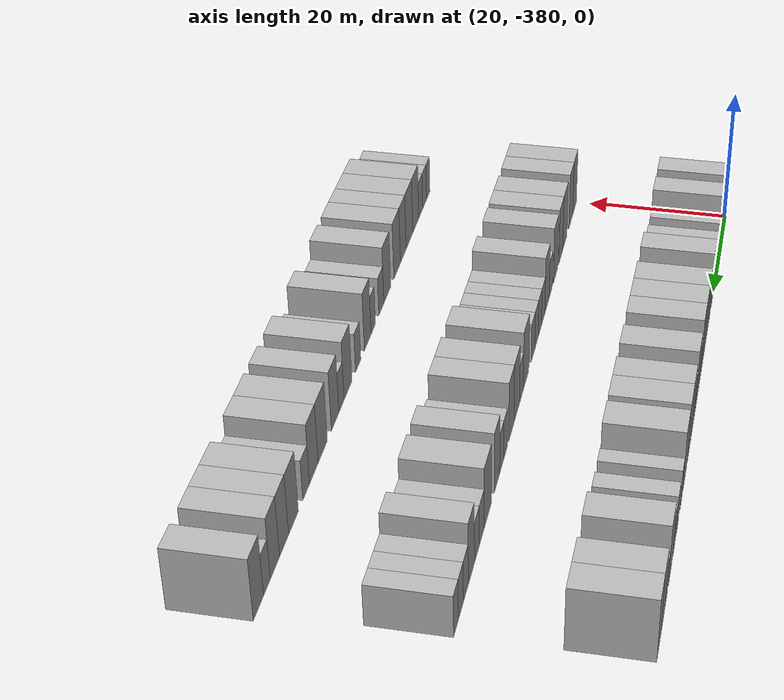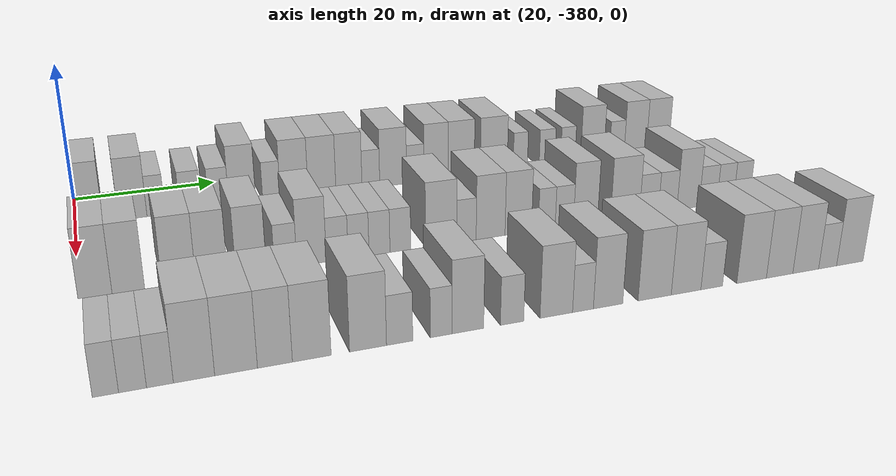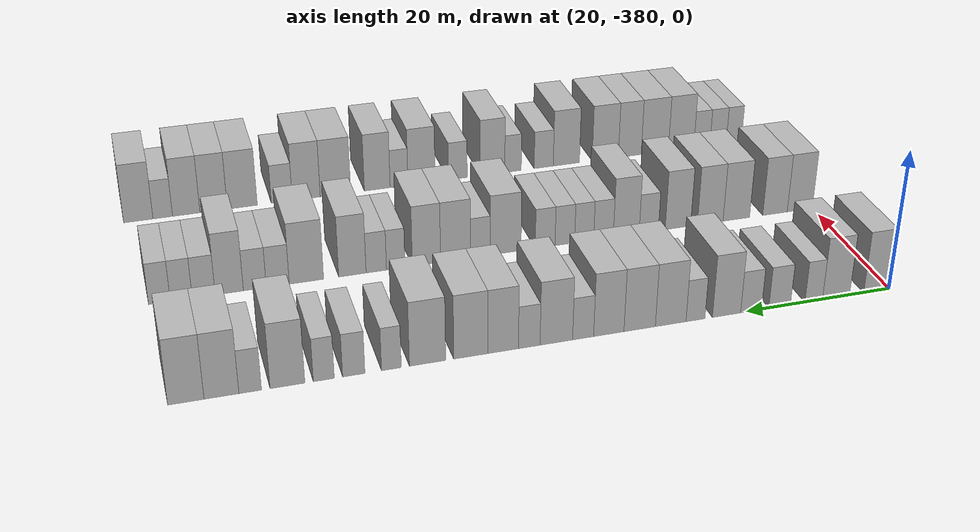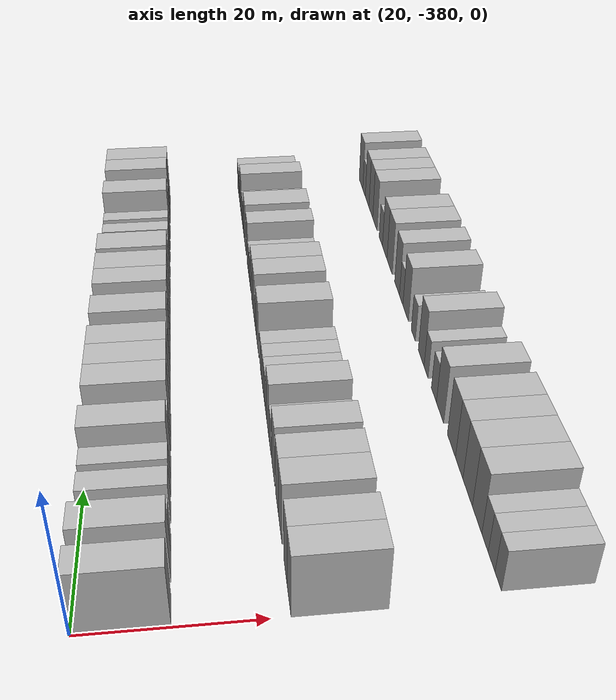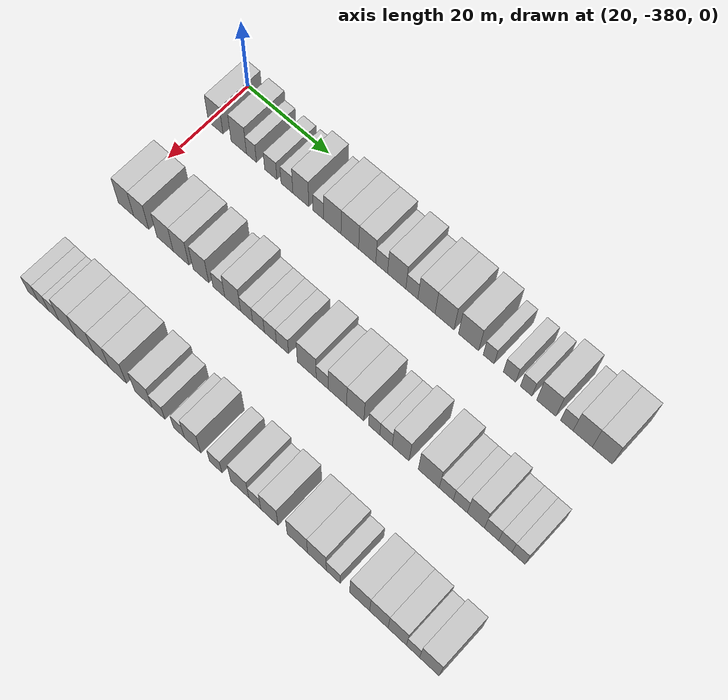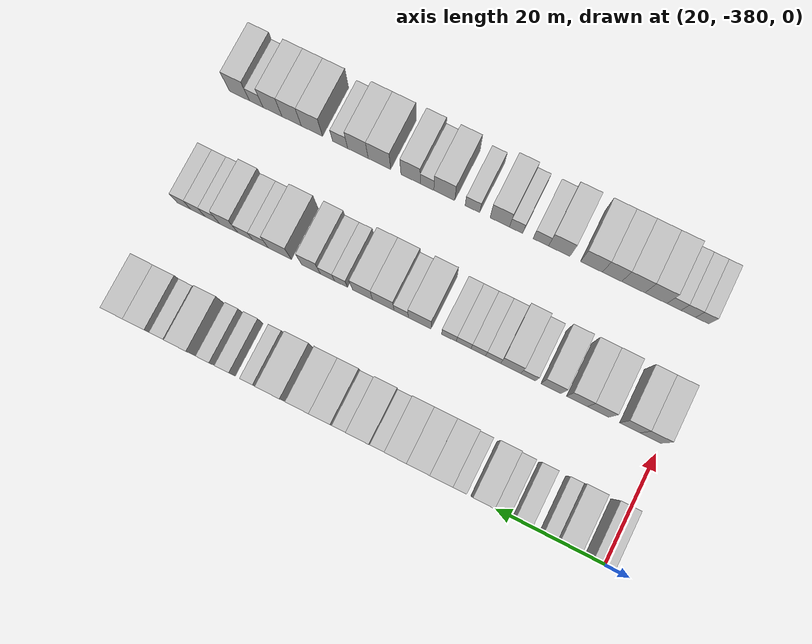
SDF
<sdf version="1.6">
 <world name="default">
  <model name="building_1">
   <static>1</static>
   <pose>25.0000 -378.1661 0 0.000000 0.000000 0.000000</pose>
   <link name="link">
    <pose>0 0 4.50 0 0 0</pose>
    <collision name="collision"><geometry><box><size>10.0000 3.6678 9.0000</size></box></geometry></collision>
    <visual name="visual">
     <cast_shadows>0</cast_shadows>
     <geometry><box><size>10.0000 3.6678 9.0000</size></box></geometry>
     <material>
      <script>
       <uri>model://HANNAS_wall/materials/scripts</uri>
       <uri>model://HANNAS_wall/materials/textures</uri>
       <name>vrc/HANNAS_wall</name>
      </script>
     </material>
    </visual>
   </link>
  </model>
  <model name="building_2">
   <static>1</static>
   <pose>25.0000 -372.4223 0 0.000000 0.000000 0.000000</pose>
   <link name="link">
    <pose>0 0 4.50 0 0 0</pose>
    <collision name="collision"><geometry><box><size>10.0000 3.8199 9.0000</size></box></geometry></collision>
    <visual name="visual">
     <cast_shadows>0</cast_shadows>
     <geometry><box><size>10.0000 3.8199 9.0000</size></box></geometry>
     <material>
      <script>
       <uri>model://HANNAS_wall/materials/scripts</uri>
       <uri>model://HANNAS_wall/materials/textures</uri>
       <name>vrc/HANNAS_wall</name>
      </script>
     </material>
    </visual>
   </link>
  </model>
  <model name="building_3">
   <static>1</static>
   <pose>25.0000 -369.2865 0 0.000000 0.000000 0.000000</pose>
   <link name="link">
    <pose>0 0 3.00 0 0 0</pose>
    <collision name="collision"><geometry><box><size>10.0000 2.4517 6.0000</size></box></geometry></collision>
    <visual name="visual">
     <cast_shadows>0</cast_shadows>
     <geometry><box><size>10.0000 2.4517 6.0000</size></box></geometry>
     <material>
      <script>
       <uri>model://HANNAS_wall/materials/scripts</uri>
       <uri>model://HANNAS_wall/materials/textures</uri>
       <name>vrc/HANNAS_wall</name>
      </script>
     </material>
    </visual>
   </link>
  </model>
  <model name="building_4">
   <static>1</static>
   <pose>25.0000 -364.5643 0 0.000000 0.000000 0.000000</pose>
   <link name="link">
    <pose>0 0 3.00 0 0 0</pose>
    <collision name="collision"><geometry><box><size>10.0000 2.9926 6.0000</size></box></geometry></collision>
    <visual name="visual">
     <cast_shadows>0</cast_shadows>
     <geometry><box><size>10.0000 2.9926 6.0000</size></box></geometry>
     <material>
      <script>
       <uri>model://HANNAS_wall/materials/scripts</uri>
       <uri>model://HANNAS_wall/materials/textures</uri>
       <name>vrc/HANNAS_wall</name>
      </script>
     </material>
    </visual>
   </link>
  </model>
  <model name="building_5">
   <static>1</static>
   <pose>25.0000 -360.6418 0 0.000000 0.000000 0.000000</pose>
   <link name="link">
    <pose>0 0 3.00 0 0 0</pose>
    <collision name="collision"><geometry><box><size>10.0000 2.8523 6.0000</size></box></geometry></collision>
    <visual name="visual">
     <cast_shadows>0</cast_shadows>
     <geometry><box><size>10.0000 2.8523 6.0000</size></box></geometry>
     <material>
      <script>
       <uri>model://HANNAS_wall/materials/scripts</uri>
       <uri>model://HANNAS_wall/materials/textures</uri>
       <name>vrc/HANNAS_wall</name>
      </script>
     </material>
    </visual>
   </link>
  </model>
  <model name="building_6">
   <static>1</static>
   <pose>25.0000 -357.3003 0 0.000000 0.000000 0.000000</pose>
   <link name="link">
    <pose>0 0 4.50 0 0 0</pose>
    <collision name="collision"><geometry><box><size>10.0000 3.8306 9.0000</size></box></geometry></collision>
    <visual name="visual">
     <cast_shadows>0</cast_shadows>
     <geometry><box><size>10.0000 3.8306 9.0000</size></box></geometry>
     <material>
      <script>
       <uri>model://HANNAS_wall/materials/scripts</uri>
       <uri>model://HANNAS_wall/materials/textures</uri>
       <name>vrc/HANNAS_wall</name>
      </script>
     </material>
    </visual>
   </link>
  </model>
  <model name="building_7">
   <static>1</static>
   <pose>25.0000 -353.1122 0 0.000000 0.000000 0.000000</pose>
   <link name="link">
    <pose>0 0 3.00 0 0 0</pose>
    <collision name="collision"><geometry><box><size>10.0000 2.5456 6.0000</size></box></geometry></collision>
    <visual name="visual">
     <cast_shadows>0</cast_shadows>
     <geometry><box><size>10.0000 2.5456 6.0000</size></box></geometry>
     <material>
      <script>
       <uri>model://HANNAS_wall/materials/scripts</uri>
       <uri>model://HANNAS_wall/materials/textures</uri>
       <name>vrc/HANNAS_wall</name>
      </script>
     </material>
    </visual>
   </link>
  </model>
  <model name="building_8">
   <static>1</static>
   <pose>25.0000 -349.7991 0 0.000000 0.000000 0.000000</pose>
   <link name="link">
    <pose>0 0 4.50 0 0 0</pose>
    <collision name="collision"><geometry><box><size>10.0000 4.0807 9.0000</size></box></geometry></collision>
    <visual name="visual">
     <cast_shadows>0</cast_shadows>
     <geometry><box><size>10.0000 4.0807 9.0000</size></box></geometry>
     <material>
      <script>
       <uri>model://HANNAS_wall/materials/scripts</uri>
       <uri>model://HANNAS_wall/materials/textures</uri>
       <name>vrc/HANNAS_wall</name>
      </script>
     </material>
    </visual>
   </link>
  </model>
  <model name="building_9">
   <static>1</static>
   <pose>25.0000 -345.6903 0 0.000000 0.000000 0.000000</pose>
   <link name="link">
    <pose>0 0 4.50 0 0 0</pose>
    <collision name="collision"><geometry><box><size>10.0000 4.1368 9.0000</size></box></geometry></collision>
    <visual name="visual">
     <cast_shadows>0</cast_shadows>
     <geometry><box><size>10.0000 4.1368 9.0000</size></box></geometry>
     <material>
      <script>
       <uri>model://HANNAS_wall/materials/scripts</uri>
       <uri>model://HANNAS_wall/materials/textures</uri>
       <name>vrc/HANNAS_wall</name>
      </script>
     </material>
    </visual>
   </link>
  </model>
  <model name="building_10">
   <static>1</static>
   <pose>25.0000 -341.6438 0 0.000000 0.000000 0.000000</pose>
   <link name="link">
    <pose>0 0 4.50 0 0 0</pose>
    <collision name="collision"><geometry><box><size>10.0000 3.9563 9.0000</size></box></geometry></collision>
    <visual name="visual">
     <cast_shadows>0</cast_shadows>
     <geometry><box><size>10.0000 3.9563 9.0000</size></box></geometry>
     <material>
      <script>
       <uri>model://HANNAS_wall/materials/scripts</uri>
       <uri>model://HANNAS_wall/materials/textures</uri>
       <name>vrc/HANNAS_wall</name>
      </script>
     </material>
    </visual>
   </link>
  </model>
  <model name="building_11">
   <static>1</static>
   <pose>25.0000 -338.3065 0 0.000000 0.000000 0.000000</pose>
   <link name="link">
    <pose>0 0 3.00 0 0 0</pose>
    <collision name="collision"><geometry><box><size>10.0000 2.7184 6.0000</size></box></geometry></collision>
    <visual name="visual">
     <cast_shadows>0</cast_shadows>
     <geometry><box><size>10.0000 2.7184 6.0000</size></box></geometry>
     <material>
      <script>
       <uri>model://HANNAS_wall/materials/scripts</uri>
       <uri>model://HANNAS_wall/materials/textures</uri>
       <name>vrc/HANNAS_wall</name>
      </script>
     </material>
    </visual>
   </link>
  </model>
  <model name="building_12">
   <static>1</static>
   <pose>25.0000 -334.8588 0 0.000000 0.000000 0.000000</pose>
   <link name="link">
    <pose>0 0 4.50 0 0 0</pose>
    <collision name="collision"><geometry><box><size>10.0000 4.1769 9.0000</size></box></geometry></collision>
    <visual name="visual">
     <cast_shadows>0</cast_shadows>
     <geometry><box><size>10.0000 4.1769 9.0000</size></box></geometry>
     <material>
      <script>
       <uri>model://HANNAS_wall/materials/scripts</uri>
       <uri>model://HANNAS_wall/materials/textures</uri>
       <name>vrc/HANNAS_wall</name>
      </script>
     </material>
    </visual>
   </link>
  </model>
  <model name="building_13">
   <static>1</static>
   <pose>25.0000 -331.3985 0 0.000000 0.000000 0.000000</pose>
   <link name="link">
    <pose>0 0 3.00 0 0 0</pose>
    <collision name="collision"><geometry><box><size>10.0000 2.7438 6.0000</size></box></geometry></collision>
    <visual name="visual">
     <cast_shadows>0</cast_shadows>
     <geometry><box><size>10.0000 2.7438 6.0000</size></box></geometry>
     <material>
      <script>
       <uri>model://HANNAS_wall/materials/scripts</uri>
       <uri>model://HANNAS_wall/materials/textures</uri>
       <name>vrc/HANNAS_wall</name>
      </script>
     </material>
    </visual>
   </link>
  </model>
  <model name="building_14">
   <static>1</static>
   <pose>25.0000 -328.0920 0 0.000000 0.000000 0.000000</pose>
   <link name="link">
    <pose>0 0 4.50 0 0 0</pose>
    <collision name="collision"><geometry><box><size>10.0000 3.8692 9.0000</size></box></geometry></collision>
    <visual name="visual">
     <cast_shadows>0</cast_shadows>
     <geometry><box><size>10.0000 3.8692 9.0000</size></box></geometry>
     <material>
      <script>
       <uri>model://HANNAS_wall/materials/scripts</uri>
       <uri>model://HANNAS_wall/materials/textures</uri>
       <name>vrc/HANNAS_wall</name>
      </script>
     </material>
    </visual>
   </link>
  </model>
  <model name="building_15">
   <static>1</static>
   <pose>25.0000 -324.0392 0 0.000000 0.000000 0.000000</pose>
   <link name="link">
    <pose>0 0 4.50 0 0 0</pose>
    <collision name="collision"><geometry><box><size>10.0000 4.2364 9.0000</size></box></geometry></collision>
    <visual name="visual">
     <cast_shadows>0</cast_shadows>
     <geometry><box><size>10.0000 4.2364 9.0000</size></box></geometry>
     <material>
      <script>
       <uri>model://HANNAS_wall/materials/scripts</uri>
       <uri>model://HANNAS_wall/materials/textures</uri>
       <name>vrc/HANNAS_wall</name>
      </script>
     </material>
    </visual>
   </link>
  </model>
  <model name="building_16">
   <static>1</static>
   <pose>25.0000 -318.6943 0 0.000000 0.000000 0.000000</pose>
   <link name="link">
    <pose>0 0 4.50 0 0 0</pose>
    <collision name="collision"><geometry><box><size>10.0000 4.4535 9.0000</size></box></geometry></collision>
    <visual name="visual">
     <cast_shadows>0</cast_shadows>
     <geometry><box><size>10.0000 4.4535 9.0000</size></box></geometry>
     <material>
      <script>
       <uri>model://HANNAS_wall/materials/scripts</uri>
       <uri>model://HANNAS_wall/materials/textures</uri>
       <name>vrc/HANNAS_wall</name>
      </script>
     </material>
    </visual>
   </link>
  </model>
  <model name="building_17">
   <static>1</static>
   <pose>25.0000 -314.2670 0 0.000000 0.000000 0.000000</pose>
   <link name="link">
    <pose>0 0 3.00 0 0 0</pose>
    <collision name="collision"><geometry><box><size>10.0000 2.4010 6.0000</size></box></geometry></collision>
    <visual name="visual">
     <cast_shadows>0</cast_shadows>
     <geometry><box><size>10.0000 2.4010 6.0000</size></box></geometry>
     <material>
      <script>
       <uri>model://HANNAS_wall/materials/scripts</uri>
       <uri>model://HANNAS_wall/materials/textures</uri>
       <name>vrc/HANNAS_wall</name>
      </script>
     </material>
    </visual>
   </link>
  </model>
  <model name="building_18">
   <static>1</static>
   <pose>25.0000 -309.7268 0 0.000000 0.000000 0.000000</pose>
   <link name="link">
    <pose>0 0 3.00 0 0 0</pose>
    <collision name="collision"><geometry><box><size>10.0000 2.6794 6.0000</size></box></geometry></collision>
    <visual name="visual">
     <cast_shadows>0</cast_shadows>
     <geometry><box><size>10.0000 2.6794 6.0000</size></box></geometry>
     <material>
      <script>
       <uri>model://HANNAS_wall/materials/scripts</uri>
       <uri>model://HANNAS_wall/materials/textures</uri>
       <name>vrc/HANNAS_wall</name>
      </script>
     </material>
    </visual>
   </link>
  </model>
  <model name="building_19">
   <static>1</static>
   <pose>25.0000 -306.1387 0 0.000000 0.000000 0.000000</pose>
   <link name="link">
    <pose>0 0 3.00 0 0 0</pose>
    <collision name="collision"><geometry><box><size>10.0000 2.4970 6.0000</size></box></geometry></collision>
    <visual name="visual">
     <cast_shadows>0</cast_shadows>
     <geometry><box><size>10.0000 2.4970 6.0000</size></box></geometry>
     <material>
      <script>
       <uri>model://HANNAS_wall/materials/scripts</uri>
       <uri>model://HANNAS_wall/materials/textures</uri>
       <name>vrc/HANNAS_wall</name>
      </script>
     </material>
    </visual>
   </link>
  </model>
  <model name="building_20">
   <static>1</static>
   <pose>25.0000 -301.8421 0 0.000000 0.000000 0.000000</pose>
   <link name="link">
    <pose>0 0 4.50 0 0 0</pose>
    <collision name="collision"><geometry><box><size>10.0000 4.0961 9.0000</size></box></geometry></collision>
    <visual name="visual">
     <cast_shadows>0</cast_shadows>
     <geometry><box><size>10.0000 4.0961 9.0000</size></box></geometry>
     <material>
      <script>
       <uri>model://HANNAS_wall/materials/scripts</uri>
       <uri>model://HANNAS_wall/materials/textures</uri>
       <name>vrc/HANNAS_wall</name>
      </script>
     </material>
    </visual>
   </link>
  </model>
  <model name="building_21">
   <static>1</static>
   <pose>25.0000 -297.4829 0 0.000000 0.000000 0.000000</pose>
   <link name="link">
    <pose>0 0 3.00 0 0 0</pose>
    <collision name="collision"><geometry><box><size>10.0000 2.6222 6.0000</size></box></geometry></collision>
    <visual name="visual">
     <cast_shadows>0</cast_shadows>
     <geometry><box><size>10.0000 2.6222 6.0000</size></box></geometry>
     <material>
      <script>
       <uri>model://HANNAS_wall/materials/scripts</uri>
       <uri>model://HANNAS_wall/materials/textures</uri>
       <name>vrc/HANNAS_wall</name>
      </script>
     </material>
    </visual>
   </link>
  </model>
  <model name="building_22">
   <static>1</static>
   <pose>25.0000 -294.1592 0 0.000000 0.000000 0.000000</pose>
   <link name="link">
    <pose>0 0 4.50 0 0 0</pose>
    <collision name="collision"><geometry><box><size>10.0000 4.0253 9.0000</size></box></geometry></collision>
    <visual name="visual">
     <cast_shadows>0</cast_shadows>
     <geometry><box><size>10.0000 4.0253 9.0000</size></box></geometry>
     <material>
      <script>
       <uri>model://HANNAS_wall/materials/scripts</uri>
       <uri>model://HANNAS_wall/materials/textures</uri>
       <name>vrc/HANNAS_wall</name>
      </script>
     </material>
    </visual>
   </link>
  </model>
  <model name="building_23">
   <static>1</static>
   <pose>25.0000 -290.0691 0 0.000000 0.000000 0.000000</pose>
   <link name="link">
    <pose>0 0 4.50 0 0 0</pose>
    <collision name="collision"><geometry><box><size>10.0000 4.1551 9.0000</size></box></geometry></collision>
    <visual name="visual">
     <cast_shadows>0</cast_shadows>
     <geometry><box><size>10.0000 4.1551 9.0000</size></box></geometry>
     <material>
      <script>
       <uri>model://HANNAS_wall/materials/scripts</uri>
       <uri>model://HANNAS_wall/materials/textures</uri>
       <name>vrc/HANNAS_wall</name>
      </script>
     </material>
    </visual>
   </link>
  </model>
  <model name="building_194">
   <static>1</static>
   <pose>47.0000 -378.0715 0 0.000000 0.000000 0.000000</pose>
   <link name="link">
    <pose>0 0 4.50 0 0 0</pose>
    <collision name="collision"><geometry><box><size>10.0000 3.8570 9.0000</size></box></geometry></collision>
    <visual name="visual">
     <cast_shadows>0</cast_shadows>
     <geometry><box><size>10.0000 3.8570 9.0000</size></box></geometry>
     <material>
      <script>
       <uri>model://HANNAS_wall/materials/scripts</uri>
       <uri>model://HANNAS_wall/materials/textures</uri>
       <name>vrc/HANNAS_wall</name>
      </script>
     </material>
    </visual>
   </link>
  </model>
  <model name="building_195">
   <static>1</static>
   <pose>47.0000 -374.2709 0 0.000000 0.000000 0.000000</pose>
   <link name="link">
    <pose>0 0 4.50 0 0 0</pose>
    <collision name="collision"><geometry><box><size>10.0000 3.7442 9.0000</size></box></geometry></collision>
    <visual name="visual">
     <cast_shadows>0</cast_shadows>
     <geometry><box><size>10.0000 3.7442 9.0000</size></box></geometry>
     <material>
      <script>
       <uri>model://HANNAS_wall/materials/scripts</uri>
       <uri>model://HANNAS_wall/materials/textures</uri>
       <name>vrc/HANNAS_wall</name>
      </script>
     </material>
    </visual>
   </link>
  </model>
  <model name="building_196">
   <static>1</static>
   <pose>47.0000 -368.3946 0 0.000000 0.000000 0.000000</pose>
   <link name="link">
    <pose>0 0 4.50 0 0 0</pose>
    <collision name="collision"><geometry><box><size>10.0000 4.0084 9.0000</size></box></geometry></collision>
    <visual name="visual">
     <cast_shadows>0</cast_shadows>
     <geometry><box><size>10.0000 4.0084 9.0000</size></box></geometry>
     <material>
      <script>
       <uri>model://HANNAS_wall/materials/scripts</uri>
       <uri>model://HANNAS_wall/materials/textures</uri>
       <name>vrc/HANNAS_wall</name>
      </script>
     </material>
    </visual>
   </link>
  </model>
  <model name="building_197">
   <static>1</static>
   <pose>47.0000 -364.4704 0 0.000000 0.000000 0.000000</pose>
   <link name="link">
    <pose>0 0 4.50 0 0 0</pose>
    <collision name="collision"><geometry><box><size>10.0000 3.8400 9.0000</size></box></geometry></collision>
    <visual name="visual">
     <cast_shadows>0</cast_shadows>
     <geometry><box><size>10.0000 3.8400 9.0000</size></box></geometry>
     <material>
      <script>
       <uri>model://HANNAS_wall/materials/scripts</uri>
       <uri>model://HANNAS_wall/materials/textures</uri>
       <name>vrc/HANNAS_wall</name>
      </script>
     </material>
    </visual>
   </link>
  </model>
  <model name="building_198">
   <static>1</static>
   <pose>47.0000 -359.6664 0 0.000000 0.000000 0.000000</pose>
   <link name="link">
    <pose>0 0 4.50 0 0 0</pose>
    <collision name="collision"><geometry><box><size>10.0000 3.7680 9.0000</size></box></geometry></collision>
    <visual name="visual">
     <cast_shadows>0</cast_shadows>
     <geometry><box><size>10.0000 3.7680 9.0000</size></box></geometry>
     <material>
      <script>
       <uri>model://HANNAS_wall/materials/scripts</uri>
       <uri>model://HANNAS_wall/materials/textures</uri>
       <name>vrc/HANNAS_wall</name>
      </script>
     </material>
    </visual>
   </link>
  </model>
  <model name="building_199">
   <static>1</static>
   <pose>47.0000 -355.3762 0 0.000000 0.000000 0.000000</pose>
   <link name="link">
    <pose>0 0 3.00 0 0 0</pose>
    <collision name="collision"><geometry><box><size>10.0000 2.8125 6.0000</size></box></geometry></collision>
    <visual name="visual">
     <cast_shadows>0</cast_shadows>
     <geometry><box><size>10.0000 2.8125 6.0000</size></box></geometry>
     <material>
      <script>
       <uri>model://HANNAS_wall/materials/scripts</uri>
       <uri>model://HANNAS_wall/materials/textures</uri>
       <name>vrc/HANNAS_wall</name>
      </script>
     </material>
    </visual>
   </link>
  </model>
  <model name="building_200">
   <static>1</static>
   <pose>47.0000 -352.0876 0 0.000000 0.000000 0.000000</pose>
   <link name="link">
    <pose>0 0 4.50 0 0 0</pose>
    <collision name="collision"><geometry><box><size>10.0000 3.7647 9.0000</size></box></geometry></collision>
    <visual name="visual">
     <cast_shadows>0</cast_shadows>
     <geometry><box><size>10.0000 3.7647 9.0000</size></box></geometry>
     <material>
      <script>
       <uri>model://HANNAS_wall/materials/scripts</uri>
       <uri>model://HANNAS_wall/materials/textures</uri>
       <name>vrc/HANNAS_wall</name>
      </script>
     </material>
    </visual>
   </link>
  </model>
  <model name="building_201">
   <static>1</static>
   <pose>47.0000 -348.7897 0 0.000000 0.000000 0.000000</pose>
   <link name="link">
    <pose>0 0 3.00 0 0 0</pose>
    <collision name="collision"><geometry><box><size>10.0000 2.8311 6.0000</size></box></geometry></collision>
    <visual name="visual">
     <cast_shadows>0</cast_shadows>
     <geometry><box><size>10.0000 2.8311 6.0000</size></box></geometry>
     <material>
      <script>
       <uri>model://HANNAS_wall/materials/scripts</uri>
       <uri>model://HANNAS_wall/materials/textures</uri>
       <name>vrc/HANNAS_wall</name>
      </script>
     </material>
    </visual>
   </link>
  </model>
  <model name="building_202">
   <static>1</static>
   <pose>47.0000 -346.0051 0 0.000000 0.000000 0.000000</pose>
   <link name="link">
    <pose>0 0 3.00 0 0 0</pose>
    <collision name="collision"><geometry><box><size>10.0000 2.7381 6.0000</size></box></geometry></collision>
    <visual name="visual">
     <cast_shadows>0</cast_shadows>
     <geometry><box><size>10.0000 2.7381 6.0000</size></box></geometry>
     <material>
      <script>
       <uri>model://HANNAS_wall/materials/scripts</uri>
       <uri>model://HANNAS_wall/materials/textures</uri>
       <name>vrc/HANNAS_wall</name>
      </script>
     </material>
    </visual>
   </link>
  </model>
  <model name="building_203">
   <static>1</static>
   <pose>47.0000 -343.2416 0 0.000000 0.000000 0.000000</pose>
   <link name="link">
    <pose>0 0 3.00 0 0 0</pose>
    <collision name="collision"><geometry><box><size>10.0000 2.7889 6.0000</size></box></geometry></collision>
    <visual name="visual">
     <cast_shadows>0</cast_shadows>
     <geometry><box><size>10.0000 2.7889 6.0000</size></box></geometry>
     <material>
      <script>
       <uri>model://HANNAS_wall/materials/scripts</uri>
       <uri>model://HANNAS_wall/materials/textures</uri>
       <name>vrc/HANNAS_wall</name>
      </script>
     </material>
    </visual>
   </link>
  </model>
  <model name="building_204">
   <static>1</static>
   <pose>47.0000 -340.4450 0 0.000000 0.000000 0.000000</pose>
   <link name="link">
    <pose>0 0 3.00 0 0 0</pose>
    <collision name="collision"><geometry><box><size>10.0000 2.8043 6.0000</size></box></geometry></collision>
    <visual name="visual">
     <cast_shadows>0</cast_shadows>
     <geometry><box><size>10.0000 2.8043 6.0000</size></box></geometry>
     <material>
      <script>
       <uri>model://HANNAS_wall/materials/scripts</uri>
       <uri>model://HANNAS_wall/materials/textures</uri>
       <name>vrc/HANNAS_wall</name>
      </script>
     </material>
    </visual>
   </link>
  </model>
  <model name="building_205">
   <static>1</static>
   <pose>47.0000 -334.8884 0 0.000000 0.000000 0.000000</pose>
   <link name="link">
    <pose>0 0 4.50 0 0 0</pose>
    <collision name="collision"><geometry><box><size>10.0000 4.3088 9.0000</size></box></geometry></collision>
    <visual name="visual">
     <cast_shadows>0</cast_shadows>
     <geometry><box><size>10.0000 4.3088 9.0000</size></box></geometry>
     <material>
      <script>
       <uri>model://HANNAS_wall/materials/scripts</uri>
       <uri>model://HANNAS_wall/materials/textures</uri>
       <name>vrc/HANNAS_wall</name>
      </script>
     </material>
    </visual>
   </link>
  </model>
  <model name="building_206">
   <static>1</static>
   <pose>47.0000 -331.3678 0 0.000000 0.000000 0.000000</pose>
   <link name="link">
    <pose>0 0 3.00 0 0 0</pose>
    <collision name="collision"><geometry><box><size>10.0000 2.7324 6.0000</size></box></geometry></collision>
    <visual name="visual">
     <cast_shadows>0</cast_shadows>
     <geometry><box><size>10.0000 2.7324 6.0000</size></box></geometry>
     <material>
      <script>
       <uri>model://HANNAS_wall/materials/scripts</uri>
       <uri>model://HANNAS_wall/materials/textures</uri>
       <name>vrc/HANNAS_wall</name>
      </script>
     </material>
    </visual>
   </link>
  </model>
  <model name="building_207">
   <static>1</static>
   <pose>47.0000 -327.9407 0 0.000000 0.000000 0.000000</pose>
   <link name="link">
    <pose>0 0 4.50 0 0 0</pose>
    <collision name="collision"><geometry><box><size>10.0000 4.1219 9.0000</size></box></geometry></collision>
    <visual name="visual">
     <cast_shadows>0</cast_shadows>
     <geometry><box><size>10.0000 4.1219 9.0000</size></box></geometry>
     <material>
      <script>
       <uri>model://HANNAS_wall/materials/scripts</uri>
       <uri>model://HANNAS_wall/materials/textures</uri>
       <name>vrc/HANNAS_wall</name>
      </script>
     </material>
    </visual>
   </link>
  </model>
  <model name="building_208">
   <static>1</static>
   <pose>47.0000 -323.9572 0 0.000000 0.000000 0.000000</pose>
   <link name="link">
    <pose>0 0 4.50 0 0 0</pose>
    <collision name="collision"><geometry><box><size>10.0000 3.8450 9.0000</size></box></geometry></collision>
    <visual name="visual">
     <cast_shadows>0</cast_shadows>
     <geometry><box><size>10.0000 3.8450 9.0000</size></box></geometry>
     <material>
      <script>
       <uri>model://HANNAS_wall/materials/scripts</uri>
       <uri>model://HANNAS_wall/materials/textures</uri>
       <name>vrc/HANNAS_wall</name>
      </script>
     </material>
    </visual>
   </link>
  </model>
  <model name="building_209">
   <static>1</static>
   <pose>47.0000 -319.7883 0 0.000000 0.000000 0.000000</pose>
   <link name="link">
    <pose>0 0 3.00 0 0 0</pose>
    <collision name="collision"><geometry><box><size>10.0000 2.4927 6.0000</size></box></geometry></collision>
    <visual name="visual">
     <cast_shadows>0</cast_shadows>
     <geometry><box><size>10.0000 2.4927 6.0000</size></box></geometry>
     <material>
      <script>
       <uri>model://HANNAS_wall/materials/scripts</uri>
       <uri>model://HANNAS_wall/materials/textures</uri>
       <name>vrc/HANNAS_wall</name>
      </script>
     </material>
    </visual>
   </link>
  </model>
  <model name="building_210">
   <static>1</static>
   <pose>47.0000 -317.1748 0 0.000000 0.000000 0.000000</pose>
   <link name="link">
    <pose>0 0 3.00 0 0 0</pose>
    <collision name="collision"><geometry><box><size>10.0000 2.7344 6.0000</size></box></geometry></collision>
    <visual name="visual">
     <cast_shadows>0</cast_shadows>
     <geometry><box><size>10.0000 2.7344 6.0000</size></box></geometry>
     <material>
      <script>
       <uri>model://HANNAS_wall/materials/scripts</uri>
       <uri>model://HANNAS_wall/materials/textures</uri>
       <name>vrc/HANNAS_wall</name>
      </script>
     </material>
    </visual>
   </link>
  </model>
  <model name="building_211">
   <static>1</static>
   <pose>47.0000 -313.9821 0 0.000000 0.000000 0.000000</pose>
   <link name="link">
    <pose>0 0 4.50 0 0 0</pose>
    <collision name="collision"><geometry><box><size>10.0000 3.6511 9.0000</size></box></geometry></collision>
    <visual name="visual">
     <cast_shadows>0</cast_shadows>
     <geometry><box><size>10.0000 3.6511 9.0000</size></box></geometry>
     <material>
      <script>
       <uri>model://HANNAS_wall/materials/scripts</uri>
       <uri>model://HANNAS_wall/materials/textures</uri>
       <name>vrc/HANNAS_wall</name>
      </script>
     </material>
    </visual>
   </link>
  </model>
  <model name="building_212">
   <static>1</static>
   <pose>47.0000 -307.9067 0 0.000000 0.000000 0.000000</pose>
   <link name="link">
    <pose>0 0 4.50 0 0 0</pose>
    <collision name="collision"><geometry><box><size>10.0000 4.4996 9.0000</size></box></geometry></collision>
    <visual name="visual">
     <cast_shadows>0</cast_shadows>
     <geometry><box><size>10.0000 4.4996 9.0000</size></box></geometry>
     <material>
      <script>
       <uri>model://HANNAS_wall/materials/scripts</uri>
       <uri>model://HANNAS_wall/materials/textures</uri>
       <name>vrc/HANNAS_wall</name>
      </script>
     </material>
    </visual>
   </link>
  </model>
  <model name="building_213">
   <static>1</static>
   <pose>47.0000 -304.1608 0 0.000000 0.000000 0.000000</pose>
   <link name="link">
    <pose>0 0 3.00 0 0 0</pose>
    <collision name="collision"><geometry><box><size>10.0000 2.9921 6.0000</size></box></geometry></collision>
    <visual name="visual">
     <cast_shadows>0</cast_shadows>
     <geometry><box><size>10.0000 2.9921 6.0000</size></box></geometry>
     <material>
      <script>
       <uri>model://HANNAS_wall/materials/scripts</uri>
       <uri>model://HANNAS_wall/materials/textures</uri>
       <name>vrc/HANNAS_wall</name>
      </script>
     </material>
    </visual>
   </link>
  </model>
  <model name="building_214">
   <static>1</static>
   <pose>47.0000 -301.1871 0 0.000000 0.000000 0.000000</pose>
   <link name="link">
    <pose>0 0 3.00 0 0 0</pose>
    <collision name="collision"><geometry><box><size>10.0000 2.9552 6.0000</size></box></geometry></collision>
    <visual name="visual">
     <cast_shadows>0</cast_shadows>
     <geometry><box><size>10.0000 2.9552 6.0000</size></box></geometry>
     <material>
      <script>
       <uri>model://HANNAS_wall/materials/scripts</uri>
       <uri>model://HANNAS_wall/materials/textures</uri>
       <name>vrc/HANNAS_wall</name>
      </script>
     </material>
    </visual>
   </link>
  </model>
  <model name="building_215">
   <static>1</static>
   <pose>47.0000 -297.9022 0 0.000000 0.000000 0.000000</pose>
   <link name="link">
    <pose>0 0 4.50 0 0 0</pose>
    <collision name="collision"><geometry><box><size>10.0000 3.6146 9.0000</size></box></geometry></collision>
    <visual name="visual">
     <cast_shadows>0</cast_shadows>
     <geometry><box><size>10.0000 3.6146 9.0000</size></box></geometry>
     <material>
      <script>
       <uri>model://HANNAS_wall/materials/scripts</uri>
       <uri>model://HANNAS_wall/materials/textures</uri>
       <name>vrc/HANNAS_wall</name>
      </script>
     </material>
    </visual>
   </link>
  </model>
  <model name="building_216">
   <static>1</static>
   <pose>47.0000 -294.6326 0 0.000000 0.000000 0.000000</pose>
   <link name="link">
    <pose>0 0 3.00 0 0 0</pose>
    <collision name="collision"><geometry><box><size>10.0000 2.9246 6.0000</size></box></geometry></collision>
    <visual name="visual">
     <cast_shadows>0</cast_shadows>
     <geometry><box><size>10.0000 2.9246 6.0000</size></box></geometry>
     <material>
      <script>
       <uri>model://HANNAS_wall/materials/scripts</uri>
       <uri>model://HANNAS_wall/materials/textures</uri>
       <name>vrc/HANNAS_wall</name>
      </script>
     </material>
    </visual>
   </link>
  </model>
  <model name="building_217">
   <static>1</static>
   <pose>47.0000 -291.7866 0 0.000000 0.000000 0.000000</pose>
   <link name="link">
    <pose>0 0 3.00 0 0 0</pose>
    <collision name="collision"><geometry><box><size>10.0000 2.7674 6.0000</size></box></geometry></collision>
    <visual name="visual">
     <cast_shadows>0</cast_shadows>
     <geometry><box><size>10.0000 2.7674 6.0000</size></box></geometry>
     <material>
      <script>
       <uri>model://HANNAS_wall/materials/scripts</uri>
       <uri>model://HANNAS_wall/materials/textures</uri>
       <name>vrc/HANNAS_wall</name>
      </script>
     </material>
    </visual>
   </link>
  </model>
  <model name="building_218">
   <static>1</static>
   <pose>47.0000 -289.0364 0 0.000000 0.000000 0.000000</pose>
   <link name="link">
    <pose>0 0 3.00 0 0 0</pose>
    <collision name="collision"><geometry><box><size>10.0000 2.7330 6.0000</size></box></geometry></collision>
    <visual name="visual">
     <cast_shadows>0</cast_shadows>
     <geometry><box><size>10.0000 2.7330 6.0000</size></box></geometry>
     <material>
      <script>
       <uri>model://HANNAS_wall/materials/scripts</uri>
       <uri>model://HANNAS_wall/materials/textures</uri>
       <name>vrc/HANNAS_wall</name>
      </script>
     </material>
    </visual>
   </link>
  </model>
  <model name="building_385">
   <static>1</static>
   <pose>69.0000 -377.7466 0 0.000000 0.000000 0.000000</pose>
   <link name="link">
    <pose>0 0 3.00 0 0 0</pose>
    <collision name="collision"><geometry><box><size>10.0000 2.5067 6.0000</size></box></geometry></collision>
    <visual name="visual">
     <cast_shadows>0</cast_shadows>
     <geometry><box><size>10.0000 2.5067 6.0000</size></box></geometry>
     <material>
      <script>
       <uri>model://HANNAS_wall/materials/scripts</uri>
       <uri>model://HANNAS_wall/materials/textures</uri>
       <name>vrc/HANNAS_wall</name>
      </script>
     </material>
    </visual>
   </link>
  </model>
  <model name="building_386">
   <static>1</static>
   <pose>69.0000 -375.1450 0 0.000000 0.000000 0.000000</pose>
   <link name="link">
    <pose>0 0 3.00 0 0 0</pose>
    <collision name="collision"><geometry><box><size>10.0000 2.6966 6.0000</size></box></geometry></collision>
    <visual name="visual">
     <cast_shadows>0</cast_shadows>
     <geometry><box><size>10.0000 2.6966 6.0000</size></box></geometry>
     <material>
      <script>
       <uri>model://HANNAS_wall/materials/scripts</uri>
       <uri>model://HANNAS_wall/materials/textures</uri>
       <name>vrc/HANNAS_wall</name>
      </script>
     </material>
    </visual>
   </link>
  </model>
  <model name="building_387">
   <static>1</static>
   <pose>69.0000 -372.4789 0 0.000000 0.000000 0.000000</pose>
   <link name="link">
    <pose>0 0 3.00 0 0 0</pose>
    <collision name="collision"><geometry><box><size>10.0000 2.6356 6.0000</size></box></geometry></collision>
    <visual name="visual">
     <cast_shadows>0</cast_shadows>
     <geometry><box><size>10.0000 2.6356 6.0000</size></box></geometry>
     <material>
      <script>
       <uri>model://HANNAS_wall/materials/scripts</uri>
       <uri>model://HANNAS_wall/materials/textures</uri>
       <name>vrc/HANNAS_wall</name>
      </script>
     </material>
    </visual>
   </link>
  </model>
  <model name="building_388">
   <static>1</static>
   <pose>69.0000 -369.0955 0 0.000000 0.000000 0.000000</pose>
   <link name="link">
    <pose>0 0 4.50 0 0 0</pose>
    <collision name="collision"><geometry><box><size>10.0000 4.1313 9.0000</size></box></geometry></collision>
    <visual name="visual">
     <cast_shadows>0</cast_shadows>
     <geometry><box><size>10.0000 4.1313 9.0000</size></box></geometry>
     <material>
      <script>
       <uri>model://HANNAS_wall/materials/scripts</uri>
       <uri>model://HANNAS_wall/materials/textures</uri>
       <name>vrc/HANNAS_wall</name>
      </script>
     </material>
    </visual>
   </link>
  </model>
  <model name="building_389">
   <static>1</static>
   <pose>69.0000 -364.8370 0 0.000000 0.000000 0.000000</pose>
   <link name="link">
    <pose>0 0 4.50 0 0 0</pose>
    <collision name="collision"><geometry><box><size>10.0000 4.3857 9.0000</size></box></geometry></collision>
    <visual name="visual">
     <cast_shadows>0</cast_shadows>
     <geometry><box><size>10.0000 4.3857 9.0000</size></box></geometry>
     <material>
      <script>
       <uri>model://HANNAS_wall/materials/scripts</uri>
       <uri>model://HANNAS_wall/materials/textures</uri>
       <name>vrc/HANNAS_wall</name>
      </script>
     </material>
    </visual>
   </link>
  </model>
  <model name="building_390">
   <static>1</static>
   <pose>69.0000 -360.8118 0 0.000000 0.000000 0.000000</pose>
   <link name="link">
    <pose>0 0 4.50 0 0 0</pose>
    <collision name="collision"><geometry><box><size>10.0000 3.6647 9.0000</size></box></geometry></collision>
    <visual name="visual">
     <cast_shadows>0</cast_shadows>
     <geometry><box><size>10.0000 3.6647 9.0000</size></box></geometry>
     <material>
      <script>
       <uri>model://HANNAS_wall/materials/scripts</uri>
       <uri>model://HANNAS_wall/materials/textures</uri>
       <name>vrc/HANNAS_wall</name>
      </script>
     </material>
    </visual>
   </link>
  </model>
  <model name="building_391">
   <static>1</static>
   <pose>69.0000 -356.9027 0 0.000000 0.000000 0.000000</pose>
   <link name="link">
    <pose>0 0 4.50 0 0 0</pose>
    <collision name="collision"><geometry><box><size>10.0000 4.1534 9.0000</size></box></geometry></collision>
    <visual name="visual">
     <cast_shadows>0</cast_shadows>
     <geometry><box><size>10.0000 4.1534 9.0000</size></box></geometry>
     <material>
      <script>
       <uri>model://HANNAS_wall/materials/scripts</uri>
       <uri>model://HANNAS_wall/materials/textures</uri>
       <name>vrc/HANNAS_wall</name>
      </script>
     </material>
    </visual>
   </link>
  </model>
  <model name="building_392">
   <static>1</static>
   <pose>69.0000 -350.7761 0 0.000000 0.000000 0.000000</pose>
   <link name="link">
    <pose>0 0 4.50 0 0 0</pose>
    <collision name="collision"><geometry><box><size>10.0000 4.0999 9.0000</size></box></geometry></collision>
    <visual name="visual">
     <cast_shadows>0</cast_shadows>
     <geometry><box><size>10.0000 4.0999 9.0000</size></box></geometry>
     <material>
      <script>
       <uri>model://HANNAS_wall/materials/scripts</uri>
       <uri>model://HANNAS_wall/materials/textures</uri>
       <name>vrc/HANNAS_wall</name>
      </script>
     </material>
    </visual>
   </link>
  </model>
  <model name="building_393">
   <static>1</static>
   <pose>69.0000 -347.2410 0 0.000000 0.000000 0.000000</pose>
   <link name="link">
    <pose>0 0 3.00 0 0 0</pose>
    <collision name="collision"><geometry><box><size>10.0000 2.9703 6.0000</size></box></geometry></collision>
    <visual name="visual">
     <cast_shadows>0</cast_shadows>
     <geometry><box><size>10.0000 2.9703 6.0000</size></box></geometry>
     <material>
      <script>
       <uri>model://HANNAS_wall/materials/scripts</uri>
       <uri>model://HANNAS_wall/materials/textures</uri>
       <name>vrc/HANNAS_wall</name>
      </script>
     </material>
    </visual>
   </link>
  </model>
  <model name="building_394">
   <static>1</static>
   <pose>69.0000 -342.4920 0 0.000000 0.000000 0.000000</pose>
   <link name="link">
    <pose>0 0 3.00 0 0 0</pose>
    <collision name="collision"><geometry><box><size>10.0000 2.5278 6.0000</size></box></geometry></collision>
    <visual name="visual">
     <cast_shadows>0</cast_shadows>
     <geometry><box><size>10.0000 2.5278 6.0000</size></box></geometry>
     <material>
      <script>
       <uri>model://HANNAS_wall/materials/scripts</uri>
       <uri>model://HANNAS_wall/materials/textures</uri>
       <name>vrc/HANNAS_wall</name>
      </script>
     </material>
    </visual>
   </link>
  </model>
  <model name="building_395">
   <static>1</static>
   <pose>69.0000 -339.3585 0 0.000000 0.000000 0.000000</pose>
   <link name="link">
    <pose>0 0 4.50 0 0 0</pose>
    <collision name="collision"><geometry><box><size>10.0000 3.7392 9.0000</size></box></geometry></collision>
    <visual name="visual">
     <cast_shadows>0</cast_shadows>
     <geometry><box><size>10.0000 3.7392 9.0000</size></box></geometry>
     <material>
      <script>
       <uri>model://HANNAS_wall/materials/scripts</uri>
       <uri>model://HANNAS_wall/materials/textures</uri>
       <name>vrc/HANNAS_wall</name>
      </script>
     </material>
    </visual>
   </link>
  </model>
  <model name="building_396">
   <static>1</static>
   <pose>69.0000 -334.0725 0 0.000000 0.000000 0.000000</pose>
   <link name="link">
    <pose>0 0 3.00 0 0 0</pose>
    <collision name="collision"><geometry><box><size>10.0000 2.8327 6.0000</size></box></geometry></collision>
    <visual name="visual">
     <cast_shadows>0</cast_shadows>
     <geometry><box><size>10.0000 2.8327 6.0000</size></box></geometry>
     <material>
      <script>
       <uri>model://HANNAS_wall/materials/scripts</uri>
       <uri>model://HANNAS_wall/materials/textures</uri>
       <name>vrc/HANNAS_wall</name>
      </script>
     </material>
    </visual>
   </link>
  </model>
  <model name="building_397">
   <static>1</static>
   <pose>69.0000 -328.6237 0 0.000000 0.000000 0.000000</pose>
   <link name="link">
    <pose>0 0 4.50 0 0 0</pose>
    <collision name="collision"><geometry><box><size>10.0000 4.0649 9.0000</size></box></geometry></collision>
    <visual name="visual">
     <cast_shadows>0</cast_shadows>
     <geometry><box><size>10.0000 4.0649 9.0000</size></box></geometry>
     <material>
      <script>
       <uri>model://HANNAS_wall/materials/scripts</uri>
       <uri>model://HANNAS_wall/materials/textures</uri>
       <name>vrc/HANNAS_wall</name>
      </script>
     </material>
    </visual>
   </link>
  </model>
  <model name="building_398">
   <static>1</static>
   <pose>69.0000 -325.2681 0 0.000000 0.000000 0.000000</pose>
   <link name="link">
    <pose>0 0 3.00 0 0 0</pose>
    <collision name="collision"><geometry><box><size>10.0000 2.6465 6.0000</size></box></geometry></collision>
    <visual name="visual">
     <cast_shadows>0</cast_shadows>
     <geometry><box><size>10.0000 2.6465 6.0000</size></box></geometry>
     <material>
      <script>
       <uri>model://HANNAS_wall/materials/scripts</uri>
       <uri>model://HANNAS_wall/materials/textures</uri>
       <name>vrc/HANNAS_wall</name>
      </script>
     </material>
    </visual>
   </link>
  </model>
  <model name="building_399">
   <static>1</static>
   <pose>69.0000 -322.0464 0 0.000000 0.000000 0.000000</pose>
   <link name="link">
    <pose>0 0 4.50 0 0 0</pose>
    <collision name="collision"><geometry><box><size>10.0000 3.7968 9.0000</size></box></geometry></collision>
    <visual name="visual">
     <cast_shadows>0</cast_shadows>
     <geometry><box><size>10.0000 3.7968 9.0000</size></box></geometry>
     <material>
      <script>
       <uri>model://HANNAS_wall/materials/scripts</uri>
       <uri>model://HANNAS_wall/materials/textures</uri>
       <name>vrc/HANNAS_wall</name>
      </script>
     </material>
    </visual>
   </link>
  </model>
  <model name="building_400">
   <static>1</static>
   <pose>69.0000 -315.9339 0 0.000000 0.000000 0.000000</pose>
   <link name="link">
    <pose>0 0 4.50 0 0 0</pose>
    <collision name="collision"><geometry><box><size>10.0000 4.4282 9.0000</size></box></geometry></collision>
    <visual name="visual">
     <cast_shadows>0</cast_shadows>
     <geometry><box><size>10.0000 4.4282 9.0000</size></box></geometry>
     <material>
      <script>
       <uri>model://HANNAS_wall/materials/scripts</uri>
       <uri>model://HANNAS_wall/materials/textures</uri>
       <name>vrc/HANNAS_wall</name>
      </script>
     </material>
    </visual>
   </link>
  </model>
  <model name="building_401">
   <static>1</static>
   <pose>69.0000 -311.7020 0 0.000000 0.000000 0.000000</pose>
   <link name="link">
    <pose>0 0 4.50 0 0 0</pose>
    <collision name="collision"><geometry><box><size>10.0000 4.0357 9.0000</size></box></geometry></collision>
    <visual name="visual">
     <cast_shadows>0</cast_shadows>
     <geometry><box><size>10.0000 4.0357 9.0000</size></box></geometry>
     <material>
      <script>
       <uri>model://HANNAS_wall/materials/scripts</uri>
       <uri>model://HANNAS_wall/materials/textures</uri>
       <name>vrc/HANNAS_wall</name>
      </script>
     </material>
    </visual>
   </link>
  </model>
  <model name="building_402">
   <static>1</static>
   <pose>69.0000 -308.1873 0 0.000000 0.000000 0.000000</pose>
   <link name="link">
    <pose>0 0 3.00 0 0 0</pose>
    <collision name="collision"><geometry><box><size>10.0000 2.9936 6.0000</size></box></geometry></collision>
    <visual name="visual">
     <cast_shadows>0</cast_shadows>
     <geometry><box><size>10.0000 2.9936 6.0000</size></box></geometry>
     <material>
      <script>
       <uri>model://HANNAS_wall/materials/scripts</uri>
       <uri>model://HANNAS_wall/materials/textures</uri>
       <name>vrc/HANNAS_wall</name>
      </script>
     </material>
    </visual>
   </link>
  </model>
  <model name="building_403">
   <static>1</static>
   <pose>69.0000 -302.5812 0 0.000000 0.000000 0.000000</pose>
   <link name="link">
    <pose>0 0 4.50 0 0 0</pose>
    <collision name="collision"><geometry><box><size>10.0000 4.2185 9.0000</size></box></geometry></collision>
    <visual name="visual">
     <cast_shadows>0</cast_shadows>
     <geometry><box><size>10.0000 4.2185 9.0000</size></box></geometry>
     <material>
      <script>
       <uri>model://HANNAS_wall/materials/scripts</uri>
       <uri>model://HANNAS_wall/materials/textures</uri>
       <name>vrc/HANNAS_wall</name>
      </script>
     </material>
    </visual>
   </link>
  </model>
  <model name="building_404">
   <static>1</static>
   <pose>69.0000 -298.5520 0 0.000000 0.000000 0.000000</pose>
   <link name="link">
    <pose>0 0 4.50 0 0 0</pose>
    <collision name="collision"><geometry><box><size>10.0000 3.8399 9.0000</size></box></geometry></collision>
    <visual name="visual">
     <cast_shadows>0</cast_shadows>
     <geometry><box><size>10.0000 3.8399 9.0000</size></box></geometry>
     <material>
      <script>
       <uri>model://HANNAS_wall/materials/scripts</uri>
       <uri>model://HANNAS_wall/materials/textures</uri>
       <name>vrc/HANNAS_wall</name>
      </script>
     </material>
    </visual>
   </link>
  </model>
  <model name="building_405">
   <static>1</static>
   <pose>69.0000 -294.7263 0 0.000000 0.000000 0.000000</pose>
   <link name="link">
    <pose>0 0 4.50 0 0 0</pose>
    <collision name="collision"><geometry><box><size>10.0000 3.8116 9.0000</size></box></geometry></collision>
    <visual name="visual">
     <cast_shadows>0</cast_shadows>
     <geometry><box><size>10.0000 3.8116 9.0000</size></box></geometry>
     <material>
      <script>
       <uri>model://HANNAS_wall/materials/scripts</uri>
       <uri>model://HANNAS_wall/materials/textures</uri>
       <name>vrc/HANNAS_wall</name>
      </script>
     </material>
    </visual>
   </link>
  </model>
  <model name="building_406">
   <static>1</static>
   <pose>69.0000 -291.4699 0 0.000000 0.000000 0.000000</pose>
   <link name="link">
    <pose>0 0 3.00 0 0 0</pose>
    <collision name="collision"><geometry><box><size>10.0000 2.7010 6.0000</size></box></geometry></collision>
    <visual name="visual">
     <cast_shadows>0</cast_shadows>
     <geometry><box><size>10.0000 2.7010 6.0000</size></box></geometry>
     <material>
      <script>
       <uri>model://HANNAS_wall/materials/scripts</uri>
       <uri>model://HANNAS_wall/materials/textures</uri>
       <name>vrc/HANNAS_wall</name>
      </script>
     </material>
    </visual>
   </link>
  </model>
  <model name="building_407">
   <static>1</static>
   <pose>69.0000 -288.1091 0 0.000000 0.000000 0.000000</pose>
   <link name="link">
    <pose>0 0 4.50 0 0 0</pose>
    <collision name="collision"><geometry><box><size>10.0000 4.0206 9.0000</size></box></geometry></collision>
    <visual name="visual">
     <cast_shadows>0</cast_shadows>
     <geometry><box><size>10.0000 4.0206 9.0000</size></box></geometry>
     <material>
      <script>
       <uri>model://HANNAS_wall/materials/scripts</uri>
       <uri>model://HANNAS_wall/materials/textures</uri>
       <name>vrc/HANNAS_wall</name>
      </script>
     </material>
    </visual>
   </link>
  </model>
 </world>
</sdf>
